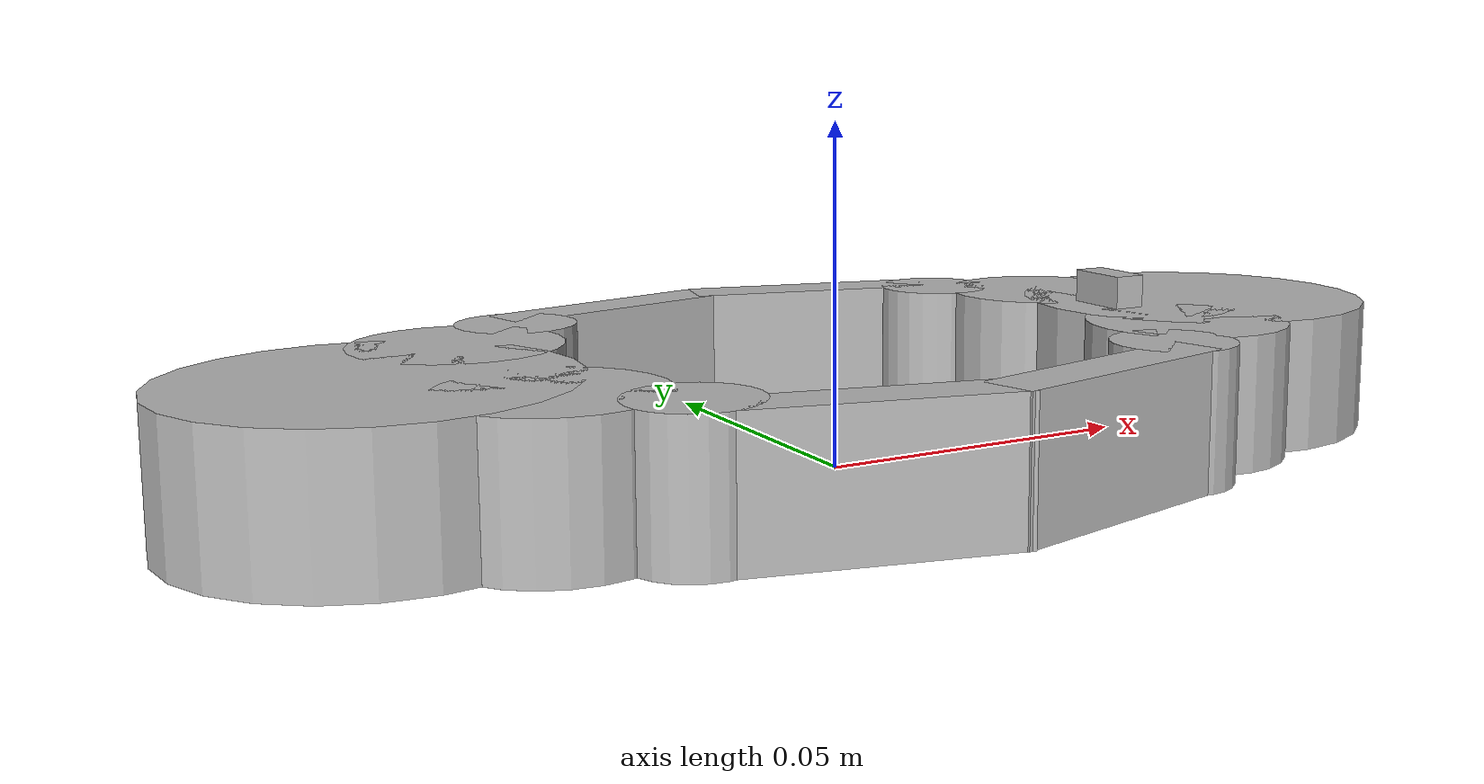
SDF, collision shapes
<?xml version="1.0" ?>
<sdf version="1.6">
  <model name="gasket_part_ariac">
    <link name="link">
      <inertial>
        <pose>0 0 0.010173 0 0 0</pose>
        <mass>0.5</mass>
        <inertia>
          <ixx>0.00054</ixx>
          <ixy>0</ixy>
          <ixz>0</ixz>
          <iyy>0.002</iyy>
          <iyz>0</iyz>
          <izz>0.0025</izz>
        </inertia>
      </inertial>

      <collision name="collision_end">
        <max_contacts>5</max_contacts>
        <pose>0.067 0 0.01 0 0 0</pose>
        <geometry>
          <cylinder>
            <radius>0.027</radius>
            <length>0.02</length>
          </cylinder>
        </geometry>
        <surface>
          <contact>
            <ode>
              <max_vel>0.0</max_vel>
              <min_depth>0.001</min_depth>
            </ode>
          </contact>
        </surface>
      </collision>

      <collision name="collision_1">
        <max_contacts>5</max_contacts>
        <pose>0.05 0.018 0.01 0 0 0</pose>
        <geometry>
          <cylinder>
            <radius>0.015</radius>
            <length>0.02</length>
          </cylinder>
        </geometry>
        <surface>
          <contact>
            <ode>
              <max_vel>0.0</max_vel>
              <min_depth>0.001</min_depth>
            </ode>
          </contact>
        </surface>
      </collision>

      <collision name="collision_2">
        <max_contacts>5</max_contacts>
        <pose>0.05 -0.018 0.01 0 0 0</pose>
        <geometry>
          <cylinder>
            <radius>0.015</radius>
            <length>0.02</length>
          </cylinder>
        </geometry>
        <surface>
          <contact>
            <ode>
              <max_vel>0.0</max_vel>
              <min_depth>0.001</min_depth>
            </ode>
          </contact>
        </surface>
      </collision>

      <collision name="collision_3">
        <max_contacts>5</max_contacts>
        <pose>0.037 0.03 0.01 0 0 0</pose>
        <geometry>
          <cylinder>
            <radius>0.009</radius>
            <length>0.02</length>
          </cylinder>
        </geometry>
        <surface>
          <contact>
            <ode>
              <max_vel>0.0</max_vel>
              <min_depth>0.001</min_depth>
            </ode>
          </contact>
        </surface>
      </collision>

      <collision name="collision_4">
        <max_contacts>5</max_contacts>
        <pose>0.037 -0.03 0.01 0 0 0</pose>
        <geometry>
          <cylinder>
            <radius>0.009</radius>
            <length>0.02</length>
          </cylinder>
        </geometry>
        <surface>
          <contact>
            <ode>
              <max_vel>0.0</max_vel>
              <min_depth>0.001</min_depth>
            </ode>
          </contact>
        </surface>
      </collision>

      <collision name="collision_5">
        <max_contacts>5</max_contacts>
        <pose>0.018 0.039 0.01 0 0 1.34</pose>
        <geometry>
          <box>
            <size>0.008 0.04 0.02</size>
          </box>
        </geometry>
        <surface>
          <contact>
            <ode>
              <max_vel>0.0</max_vel>
              <min_depth>0.001</min_depth>
            </ode>
          </contact>
        </surface>
      </collision>

      <collision name="collision_6">
        <max_contacts>5</max_contacts>
        <pose>0.018 -0.039 0.01 0 0 -1.34</pose>
        <geometry>
          <box>
            <size>0.008 0.04 0.02</size>
          </box>
        </geometry>
        <surface>
          <contact>
            <ode>
              <max_vel>0.0</max_vel>
              <min_depth>0.001</min_depth>
            </ode>
          </contact>
        </surface>
      </collision>

      <collision name="collision_end_1">
        <max_contacts>5</max_contacts>
        <pose>-0.067 0 0.01 0 0 0</pose>
        <geometry>
          <cylinder>
            <radius>0.027</radius>
            <length>0.02</length>
          </cylinder>
        </geometry>
        <surface>
          <contact>
            <ode>
              <max_vel>0.0</max_vel>
              <min_depth>0.001</min_depth>
            </ode>
          </contact>
        </surface>
      </collision>

      <collision name="collision_1_1">
        <max_contacts>5</max_contacts>
        <pose>-0.05 0.018 0.01 0 0 0</pose>
        <geometry>
          <cylinder>
            <radius>0.015</radius>
            <length>0.02</length>
          </cylinder>
        </geometry>
        <surface>
          <contact>
            <ode>
              <max_vel>0.0</max_vel>
              <min_depth>0.001</min_depth>
            </ode>
          </contact>
        </surface>
      </collision>

      <collision name="collision_2_2">
        <max_contacts>5</max_contacts>
        <pose>-0.05 -0.018 0.01 0 0 0</pose>
        <geometry>
          <cylinder>
            <radius>0.015</radius>
            <length>0.02</length>
          </cylinder>
        </geometry>
        <surface>
          <contact>
            <ode>
              <max_vel>0.0</max_vel>
              <min_depth>0.001</min_depth>
            </ode>
          </contact>
        </surface>
      </collision>

      <collision name="collision_3_2">
        <max_contacts>5</max_contacts>
        <pose>-0.037 0.03 0.01 0 0 0</pose>
        <geometry>
          <cylinder>
            <radius>0.009</radius>
            <length>0.02</length>
          </cylinder>
        </geometry>
        <surface>
          <contact>
            <ode>
              <max_vel>0.0</max_vel>
              <min_depth>0.001</min_depth>
            </ode>
          </contact>
        </surface>
      </collision>

      <collision name="collision_4_2">
        <max_contacts>5</max_contacts>
        <pose>-0.037 -0.03 0.01 0 0 0</pose>
        <geometry>
          <cylinder>
            <radius>0.009</radius>
            <length>0.02</length>
          </cylinder>
        </geometry>
        <surface>
          <contact>
            <ode>
              <max_vel>0.0</max_vel>
              <min_depth>0.001</min_depth>
            </ode>
          </contact>
        </surface>
      </collision>

      <collision name="collision_5_2">
        <max_contacts>5</max_contacts>
        <pose>-0.018 0.039 0.01 0 0 -1.34</pose>
        <geometry>
          <box>
            <size>0.008 0.04 0.02</size>
          </box>
        </geometry>
        <surface>
          <contact>
            <ode>
              <max_vel>0.0</max_vel>
              <min_depth>0.001</min_depth>
            </ode>
          </contact>
        </surface>
      </collision>

      <collision name="collision_6_2">
        <max_contacts>5</max_contacts>
        <pose>-0.018 -0.039 0.01 0 0 1.34</pose>
        <geometry>
          <box>
            <size>0.008 0.04 0.02</size>
          </box>
        </geometry>
        <surface>
          <contact>
            <ode>
              <max_vel>0.0</max_vel>
              <min_depth>0.001</min_depth>
            </ode>
          </contact>
        </surface>
      </collision>

      <visual name="visual">
         <geometry>
           <mesh>
             <scale>0.6 0.6 0.6</scale>
             <uri>model://gasket_part_ariac/meshes/gasket.dae</uri>
           </mesh>
         </geometry>
        <material>
          <script>
            <uri>model://arm_part_ariac/materials/scripts</uri>
            <uri>model://arm_part_ariac/materials/textures</uri>
            <name>ArmPart/Diffuse</name>
          </script>
        </material>
       </visual>

      <collision name="collision_asymmetric_mark">
        <pose>0.05 0.0 0.02 0 0 0</pose>
        <max_contacts>5</max_contacts>
         <geometry>
          <box>
            <size>0.005 0.01 0.01</size>
          </box>
         </geometry>
        <surface>
          <contact>
            <ode>
              <max_vel>0.0</max_vel>
              <min_depth>0.001</min_depth>
            </ode>
          </contact>
        </surface>
      </collision>

      <visual name="visual_asymmetric_mark">
        <pose>0.05 0.0 0.02 0 0 0</pose>
         <geometry>
          <box>
            <size>0.005 0.01 0.01</size>
          </box>
         </geometry>
        <material>
          <lighting>1</lighting>
          <script>
            <uri>file://media/materials/scripts/gazebo.material</uri>
            <name>Gazebo/DarkGrey</name>
          </script>
          <emissive>0 0 0 1</emissive>
        </material>
      </visual>
    </link>
  </model>
</sdf>
